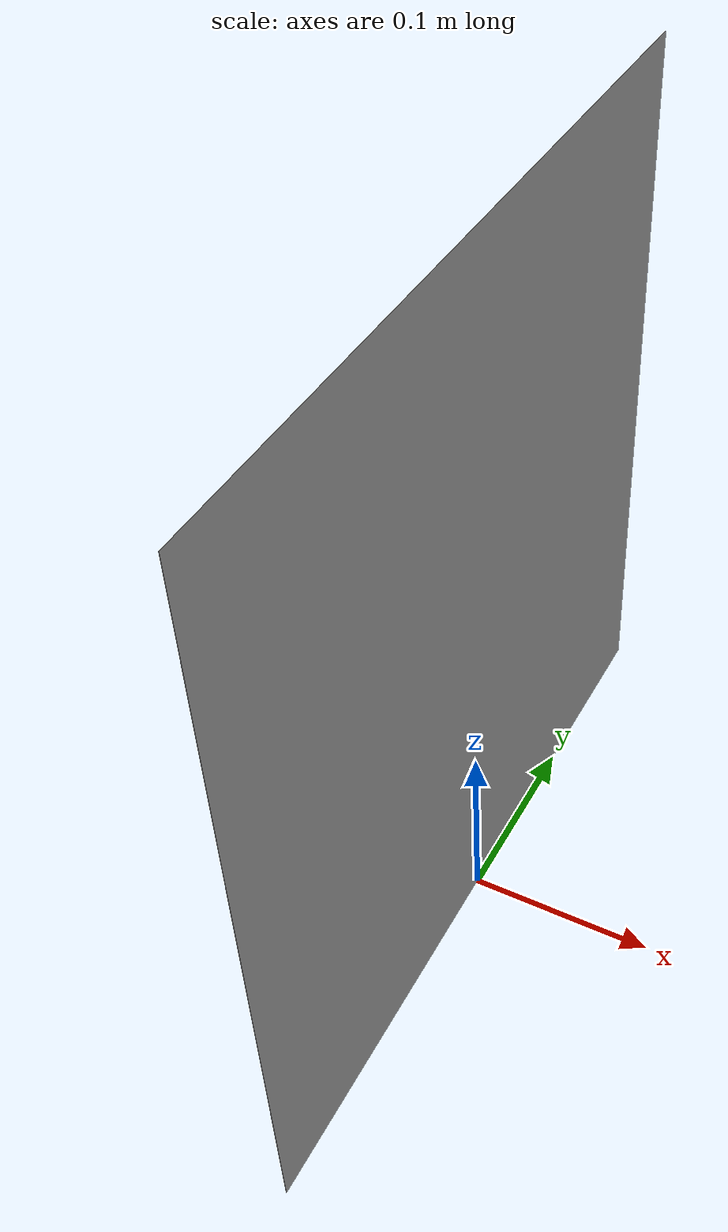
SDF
<?xml version="1.0"?>
<sdf version="1.6">
  <model name="aruco_marker02">
    <link name="link">
      <inertial>
        <pose>0 0 0 0 0 0</pose>
        <mass>0.001</mass>
        <inertia>
          <ixx>3.7499999999999997e-06</ixx>
          <ixy>0.0</ixy>
          <ixz>0.0</ixz>
          <iyy>1.8750008333333333e-06</iyy>
          <iyz>0.0</iyz>
          <izz>1.8750008333333333e-06</izz>
        </inertia>
      </inertial>
      <visual name="front_visual">
        <pose>0.00005 0 0.2 0 0 0</pose>
        <geometry>
          <box>
            <size>0.0001 0.4 0.4</size>
          </box>
        </geometry>
        <material>
          <script>
            <uri>model://aruco_marker02/materials/scripts</uri>
            <uri>model://aruco_marker02/materials/textures</uri>
            <name>Marker</name>
          </script>
        </material>
      </visual>
      <!-- Hide the marker from the back -->
      <visual name="rear_visual">
        <pose>-0.00005 0 0.2 0 0 0</pose>
        <geometry>
          <box>
            <size>0.0001 0.4 0.4</size>
          </box>
        </geometry>
      </visual>
      <collision name="collision">
        <pose>0 0 0 0 0 0</pose>
        <geometry>
          <box>
            <size>0.0001 0.15 0.15</size>
          </box>
        </geometry>
      </collision>
    </link>
  </model>
</sdf>
